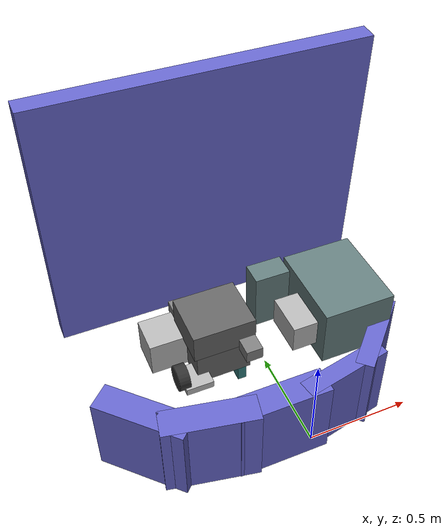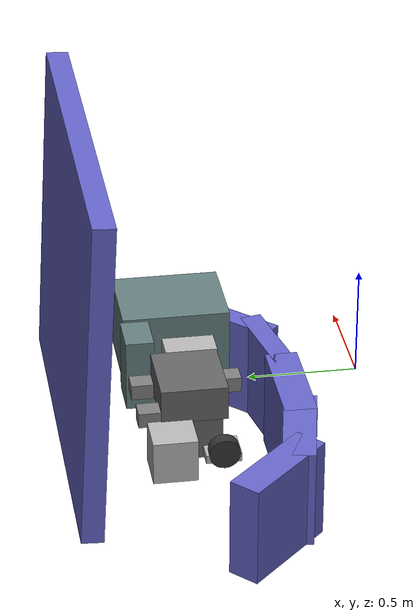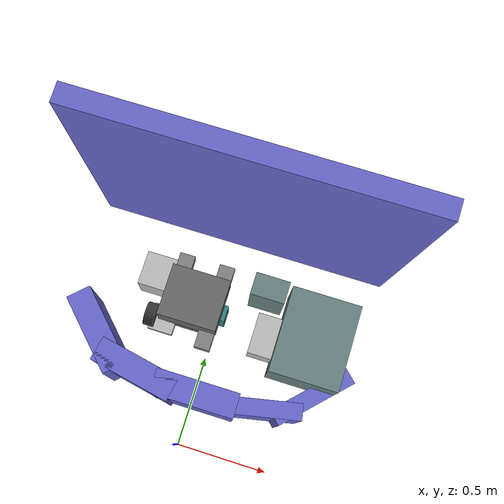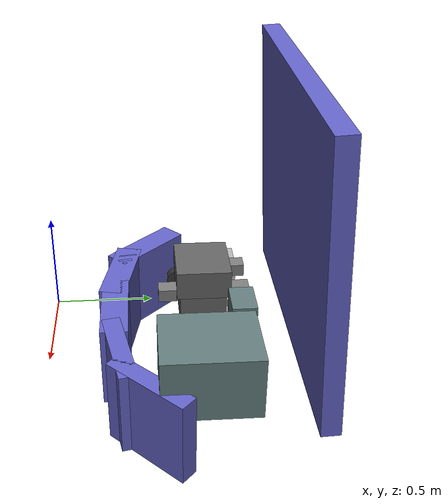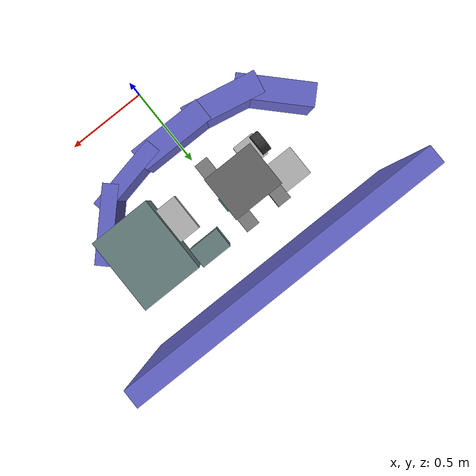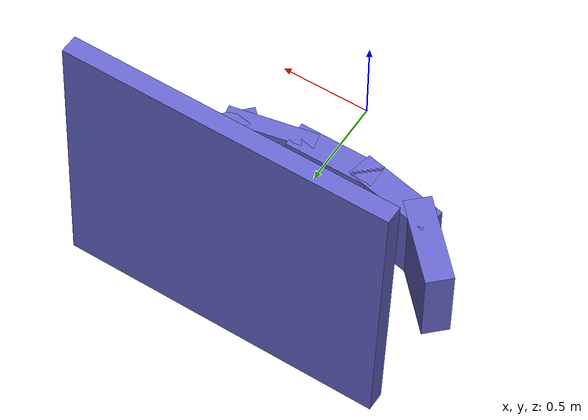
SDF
<sdf version="1.6">
 <world name="default">
  <physics name="ode" type="ode">
   <ode><constraints><contact_max_correcting_vel>0</contact_max_correcting_vel></constraints></ode>
   <max_step_size>0.002</max_step_size>
   <real_time_update_rate>0</real_time_update_rate>
  </physics>
  <plugin name="stepping_plugin" filename="libstepping_plugin.so"/>
  <plugin name="gazebo_ros_tf_plugin" filename="libgazebo_ros_tf_plugin.so"/>
  <plugin name="collision_map_plugin" filename="libcollision_map_plugin.so"/>
  <model name="planning_scene">
   <plugin name="gazebo_ros_moveit_planning_scene" filename="libgazebo_ros_moveit_planning_scene.so">
    <topicName>gazebo/planning_scene</topicName>
    <robotName>hdt_michigan</robotName>
    <frameId>val_root</frameId>
    <updatePeriod>0.1</updatePeriod>
    <scalePrimitivesFactor>1.1</scalePrimitivesFactor>
   </plugin>
  </model>
  <include><uri>model://sun</uri></include>
  <include><pose>0 0.83 -0.46 0 0 1.570796</pose><uri>model://car_platform</uri></include>
  <include><pose>0 0.3 -0.502 0 0 3.1415</pose><uri>model://car_front</uri></include>
  <include><pose>0 1.23 0.522 0 -1.52 -1.570796</pose><uri>model://car_hood</uri></include>
  <include><pose>-0.409 0.905 -0.2 0 0 0</pose><uri>model://car_alternator</uri></include>
  <include><pose>-0.156 0.793 -0.165 0 0 -1.570796</pose><uri>model://car_engine2</uri></include>
  <include><pose>0.236 0.974 -0.2 0 0 0</pose><uri>model://car_tube_and_tank</uri></include>
  <include><pose>0.346 0.723 -0.131 0 0 0</pose><uri>model://car_coolant_tank</uri></include>
  <include><pose>-0.394 0.672 -0.189 0 0 0</pose><uri>model://car_pulley</uri></include>
 </world>
</sdf>

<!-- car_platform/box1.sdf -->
<sdf version="1.6">
    <model name="box1">
        <allow_auto_disable>true</allow_auto_disable>
        <link name="link_1">
            <kinematic>true</kinematic>
            <pose>0 0 0.1 0 0 0 0</pose>
            <inertial>
                <pose>0 0 -0.08 0 0 0 0</pose>
                <inertia>
                    <ixx>0.03541666666666667</ixx>
                    <ixy>0</ixy>
                    <ixz>0</ixz>
                    <iyy>0.04166666666666667</iyy>
                    <iyz>0</iyz>
                    <izz>0.010416666666666668</izz>
                </inertia>
                <mass>10.0</mass>
            </inertial>
            <visual name="visual">
                <geometry>
                    <box>
                        <size>0.1 0.05 0.2</size>
                    </box>
                </geometry>
                <material>
                    <ambient>0.2 0.5 0.5 1.0</ambient>
                    <diffuse>0.2 0.5 0.5 1.0</diffuse>
                </material>
            </visual>
            <collision name="box_collision">
                <geometry>
                    <box>
                        <size>0.1 0.05 0.2</size>
                    </box>
                </geometry>
                <surface>
                    <friction>
                        <ode>
                            <mu>1.0</mu>
                            <mu2>1.0</mu2>
                        </ode>
                    </friction>
                    <contact>
                        <ode>
                            <kp>1e15</kp>
                            <kd>1e12</kd>
                        </ode>
                    </contact>
                </surface>
            </collision>
        </link>
    </model>
</sdf>

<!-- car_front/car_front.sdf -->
<sdf version="1.6">
    <model name="car_front">
        <allow_auto_disable>true</allow_auto_disable>
        <link name="link_1">
            <kinematic>true</kinematic>
            <pose>-0.644539 -0.18 0.23 0 -0 0.8</pose>
            <visual name="visual">
                <geometry>
                    <box>
                        <size>0.5 0.10 0.47</size>
                    </box>
                </geometry>
                <material>
                    <ambient>0.4 0.4 0.8 1.0</ambient>
                    <diffuse>0.4 0.4 0.8 1.0</diffuse>
                </material>
            </visual>
            <collision name="collision">
                <geometry>
                    <box>
                        <size>0.5 0.10 0.47</size>
                    </box>
                </geometry>
            </collision>
        </link>
        <link name="link_2">
            <kinematic>true</kinematic>
            <pose>-0.370443 -0.03 0.23 0 -0 0.2</pose>
            <visual name="visual">
                <geometry>
                    <box>
                        <size>0.5 0.10 0.47</size>
                    </box>
                </geometry>
                <material>
                    <ambient>0.4 0.4 0.8 1.0</ambient>
                    <diffuse>0.4 0.4 0.8 1.0</diffuse>
                </material>
            </visual>
            <collision name="collision">
                <geometry>
                    <box>
                        <size>0.5 0.10 0.47</size>
                    </box>
                </geometry>
            </collision>
        </link>
        <link name="link_3">
            <kinematic>true</kinematic>
            <pose>0 0 0.23 0 0 0 0</pose>
            <visual name="visual">
                <geometry>
                    <box>
                        <size>0.5 0.15 0.47</size>
                    </box>
                </geometry>
                <material>
                    <ambient>0.4 0.4 0.8 1.0</ambient>
                    <diffuse>0.4 0.4 0.8 1.0</diffuse>
                </material>
            </visual>
            <collision name="collision">
                <geometry>
                    <box>
                        <size>0.5 0.15 0.47</size>
                    </box>
                </geometry>
            </collision>
        </link>
        <link name="link_4">
            <kinematic>true</kinematic>
            <pose>0.37331 -0.03 0.23 0 0 -0.2</pose>
            <visual name="visual">
                <geometry>
                    <box>
                        <size>0.5 0.15 0.47</size>
                    </box>
                </geometry>
                <material>
                    <ambient>0.4 0.4 0.8 1.0</ambient>
                    <diffuse>0.4 0.4 0.8 1.0</diffuse>
                </material>
            </visual>
            <collision name="collision">
                <geometry>
                    <box>
                        <size>0.5 0.15 0.47</size>
                    </box>
                </geometry>
            </collision>
        </link>
        <link name="link_5">
            <kinematic>true</kinematic>
            <pose>0.658656 -0.18 0.23 0 0 -0.8</pose>
            <visual name="visual">
                <geometry>
                    <box>
                        <size>0.5 0.15 0.47</size>
                    </box>
                </geometry>
                <material>
                    <ambient>0.4 0.4 0.8 1.0</ambient>
                    <diffuse>0.4 0.4 0.8 1.0</diffuse>
                </material>
            </visual>
            <collision name="collision">
                <geometry>
                    <box>
                        <size>0.5 0.15 0.47</size>
                    </box>
                </geometry>
            </collision>
        </link>
    </model>
</sdf>

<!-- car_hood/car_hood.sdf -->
<sdf version="1.6">
    <model name="car_hood">
        <allow_auto_disable>true</allow_auto_disable>
        <link name="link_1">
            <kinematic>true</kinematic>
            <pose>0 0 0.05 0 0 0 0</pose>
            <visual name="visual">
                <geometry>
                    <box>
                        <size>1.5 1.75 0.1</size>
                    </box>
                </geometry>
                <material>
                    <ambient>0.4 0.4 0.8 1.0</ambient>
                    <diffuse>0.4 0.4 0.8 1.0</diffuse>
                </material>
            </visual>
            <collision name="collision">
                <geometry>
                    <box>
                        <size>1.5 1.75 0.1</size>
                    </box>
                </geometry>
            </collision>
        </link>
    </model>
</sdf>

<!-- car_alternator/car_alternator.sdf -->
<sdf version="1.6">
    <model name="car_alternator">
        <allow_auto_disable>true</allow_auto_disable>
        <link name="link_1">
            <kinematic>true</kinematic>
            <pose>0 0 0.105 0 0 0 0</pose>
            <visual name="visual">
                <geometry>
                    <box>
                        <size>0.20 0.20 0.20</size>
                    </box>
                </geometry>
            </visual>
            <collision name="collision">
                <geometry>
                    <box>
                        <size>0.20 0.20 0.20</size>
                    </box>
                </geometry>
            </collision>
        </link>
    </model>
</sdf>

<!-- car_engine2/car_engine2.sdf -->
<sdf version="1.6">
    <model name="car_engine2">
        <allow_auto_disable>true</allow_auto_disable>
        <link name="body2">
            <kinematic>true</kinematic>
            <pose>0 0 0.06 0 0 0 0</pose>
            <visual name="visual">
                <geometry>
                    <box>
                        <size>0.26 0.30 0.21</size>
                    </box>
                </geometry>
                <material>
                    <ambient>0.4 0.4 0.4 1.0</ambient>
                    <diffuse>0.4 0.4 0.4 1.0</diffuse>
                </material>
            </visual>
            <collision name="collision">
                <geometry>
                    <box>
                        <size>0.26 0.30 0.21</size>
                    </box>
                </geometry>
            </collision>
        </link>
        <link name="body">
            <kinematic>true</kinematic>
            <pose>0 0 0.24 0 0 0 0</pose>
            <visual name="visual">
                <geometry>
                    <box>
                        <size>0.30 0.34 0.16</size>
                    </box>
                </geometry>
                <material>
                    <ambient>0.4 0.4 0.4 1.0</ambient>
                    <diffuse>0.4 0.4 0.4 1.0</diffuse>
                </material>
            </visual>
            <collision name="collision">
                <geometry>
                    <box>
                        <size>0.30 0.34 0.16</size>
                    </box>
                </geometry>
            </collision>
        </link>
        <link name="lift_tab1">
            <kinematic>true</kinematic>
            <pose>0.20 0.12 0.18 0 0 0 0</pose>
            <visual name="visual">
                <geometry>
                    <box>
                        <size>0.1 0.09 0.07</size>
                    </box>
                </geometry>
                <material>
                    <ambient>0.5 0.5 0.5 1.0</ambient>
                    <diffuse>0.5 0.5 0.5 1.0</diffuse>
                </material>
            </visual>
            <collision name="collision">
                <geometry>
                    <box>
                        <size>0.1 0.09 0.07</size>
                    </box>
                </geometry>
            </collision>
        </link>
        <link name="lift_tab3">
            <kinematic>true</kinematic>
            <pose>-0.20 0.12 0.18 0 0 0 0</pose>
            <visual name="visual">
                <geometry>
                    <box>
                        <size>0.1 0.09 0.07</size>
                    </box>
                </geometry>
                <material>
                    <ambient>0.5 0.5 0.5 1.0</ambient>
                    <diffuse>0.5 0.5 0.5 1.0</diffuse>
                </material>
            </visual>
            <collision name="collision">
                <geometry>
                    <box>
                        <size>0.1 0.09 0.07</size>
                    </box>
                </geometry>
            </collision>
        </link>
        <link name="lift_tab4">
            <kinematic>true</kinematic>
            <pose>-0.20 -0.12 0.18 0 0 0 0</pose>
            <visual name="visual">
                <geometry>
                    <box>
                        <size>0.1 0.09 0.07</size>
                    </box>
                </geometry>
                <material>
                    <ambient>0.5 0.5 0.5 1.0</ambient>
                    <diffuse>0.5 0.5 0.5 1.0</diffuse>
                </material>
            </visual>
            <collision name="collision">
                <geometry>
                    <box>
                        <size>0.1 0.09 0.07</size>
                    </box>
                </geometry>
            </collision>
        </link>
    </model>
</sdf>

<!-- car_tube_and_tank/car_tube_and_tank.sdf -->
<sdf version="1.6">
    <model name="car_tube_and_tank">
        <allow_auto_disable>true</allow_auto_disable>
        <link name="box">
            <kinematic>true</kinematic>
            <pose>0.32 -0.2 0.17 0 0 0 0</pose>
            <visual name="visual">
                <geometry>
                    <box>
                        <size>0.40 0.5 0.34</size>
                    </box>
                </geometry>
                <material>
                    <ambient>0.4 0.5 0.5 1.0</ambient>
                    <diffuse>0.4 0.5 0.5 1.0</diffuse>
                </material>
            </visual>
            <collision name="collision">
                <geometry>
                    <box>
                        <size>0.40 0.5 0.34</size>
                    </box>
                </geometry>
            </collision>
        </link>
        <link name="tube">
            <kinematic>true</kinematic>
            <pose>0 0 0.17 0 0 0 0</pose>
            <visual name="visual">
                <geometry>
                    <box>
                        <size>0.2 0.13 0.34</size>
                    </box>
                </geometry>
                <material>
                    <ambient>0.4 0.5 0.5 1.0</ambient>
                    <diffuse>0.4 0.5 0.5 1.0</diffuse>
                </material>
            </visual>
            <collision name="collision">
                <geometry>
                    <box>
                        <size>0.2 0.18 0.34</size>
                    </box>
                </geometry>
            </collision>
        </link>
    </model>
</sdf>

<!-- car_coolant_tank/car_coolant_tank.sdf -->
<sdf version="1.6">
    <model name="car_coolant_tank">
        <allow_auto_disable>true</allow_auto_disable>
        <link name="link_1">
            <kinematic>true</kinematic>
            <pose>0 0 0.08 0 0 0 0</pose>
            <visual name="visual">
                <geometry>
                    <box>
                        <size>0.26 0.24 0.16</size>
                    </box>
                </geometry>
            </visual>
            <collision name="box_collision">
                <geometry>
                    <box>
                        <size>0.26 0.24 0.16</size>
                    </box>
                </geometry>
            </collision>
        </link>
    </model>
</sdf>

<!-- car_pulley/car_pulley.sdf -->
<sdf version="1.6">
    <model name="car_pulley">
        <allow_auto_disable>true</allow_auto_disable>
        <link name="plate">
            <kinematic>true</kinematic>
            <pose>0.075 0 0.02 0 0 0</pose>
            <visual name="visual">
                <geometry>
                    <box>
                        <size>0.15 0.16 0.04</size>
                    </box>
                </geometry>
            </visual>
            <collision name="collision">
                <geometry>
                    <box>
                        <size>0.15 0.16 0.04</size>
                    </box>
                </geometry>
            </collision>
        </link>
        <link name="pulley">
            <kinematic>true</kinematic>
            <pose>0 0 0.06 0 1.570796 0</pose>
            <visual name="visual">
                <geometry>
                    <cylinder>
                        <radius>0.07</radius>
                        <length>0.06</length>
                    </cylinder>
                </geometry>
                <material>
                    <ambient>0.2 0.2 0.2 1.0</ambient>
                    <diffuse>0.2 0.2 0.2 1.0</diffuse>
                </material>
            </visual>
            <collision name="collision">
                <geometry>
                    <cylinder>
                        <radius>0.07</radius>
                        <length>0.06</length>
                    </cylinder>
                </geometry>
            </collision>
        </link>
    </model>
</sdf>
